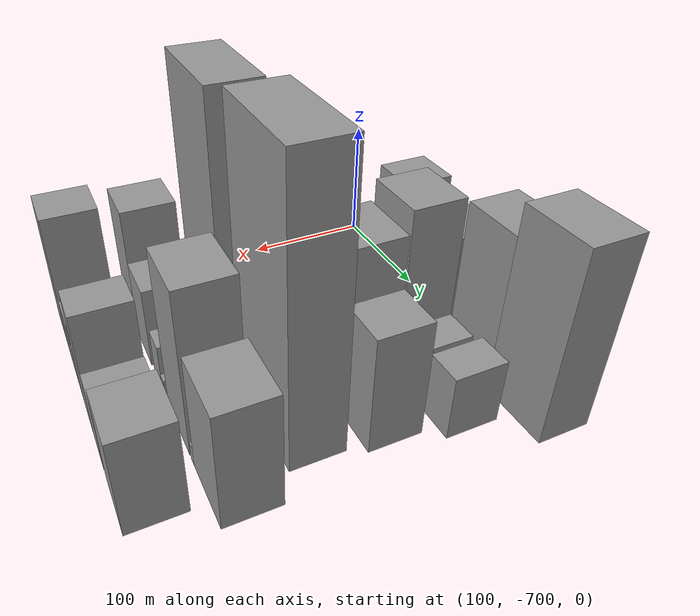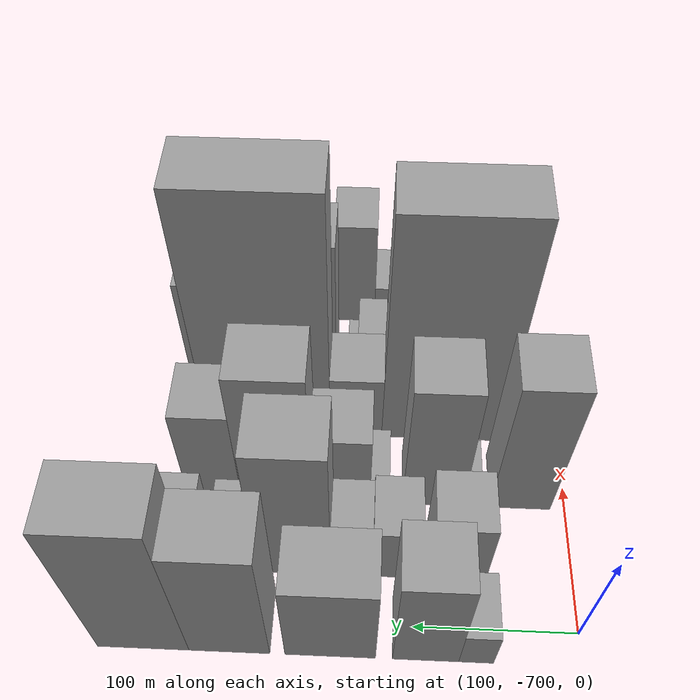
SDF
<sdf version="1.6">
 <world name="default">
  <model name="building_10">
   <static>1</static>
   <pose>100.0000 -637.5639 0 0.000000 0.000000 0.000000</pose>
   <link name="link">
    <pose>0 0 19.50 0 0 0</pose>
    <collision name="collision"><geometry><box><size>40.0000 20.5675 39.0000</size></box></geometry></collision>
    <visual name="visual">
     <cast_shadows>0</cast_shadows>
     <geometry><box><size>40.0000 20.5675 39.0000</size></box></geometry>
     <material>
      <script>
       <uri>model://grey_wall/materials/scripts</uri>
       <uri>model://grey_wall/materials/textures</uri>
       <name>vrc/grey_wall</name>
      </script>
     </material>
    </visual>
   </link>
  </model>
  <model name="building_11">
   <static>1</static>
   <pose>100.0000 -607.6773 0 0.000000 0.000000 0.000000</pose>
   <link name="link">
    <pose>0 0 51.00 0 0 0</pose>
    <collision name="collision"><geometry><box><size>40.0000 39.2058 102.0000</size></box></geometry></collision>
    <visual name="visual">
     <cast_shadows>0</cast_shadows>
     <geometry><box><size>40.0000 39.2058 102.0000</size></box></geometry>
     <material>
      <script>
       <uri>model://grey_wall/materials/scripts</uri>
       <uri>model://grey_wall/materials/textures</uri>
       <name>vrc/grey_wall</name>
      </script>
     </material>
    </visual>
   </link>
  </model>
  <model name="building_12">
   <static>1</static>
   <pose>100.0000 -551.1568 0 0.000000 0.000000 0.000000</pose>
   <link name="link">
    <pose>0 0 45.00 0 0 0</pose>
    <collision name="collision"><geometry><box><size>40.0000 53.8351 90.0000</size></box></geometry></collision>
    <visual name="visual">
     <cast_shadows>0</cast_shadows>
     <geometry><box><size>40.0000 53.8351 90.0000</size></box></geometry>
     <material>
      <script>
       <uri>model://grey_wall/materials/scripts</uri>
       <uri>model://grey_wall/materials/textures</uri>
       <name>vrc/grey_wall</name>
      </script>
     </material>
    </visual>
   </link>
  </model>
  <model name="building_13">
   <static>1</static>
   <pose>100.0000 -491.0969 0 0.000000 0.000000 0.000000</pose>
   <link name="link">
    <pose>0 0 63.00 0 0 0</pose>
    <collision name="collision"><geometry><box><size>40.0000 48.2848 126.0000</size></box></geometry></collision>
    <visual name="visual">
     <cast_shadows>0</cast_shadows>
     <geometry><box><size>40.0000 48.2848 126.0000</size></box></geometry>
     <material>
      <script>
       <uri>model://grey_wall/materials/scripts</uri>
       <uri>model://grey_wall/materials/textures</uri>
       <name>vrc/grey_wall</name>
      </script>
     </material>
    </visual>
   </link>
  </model>
  <model name="building_14">
   <static>1</static>
   <pose>100.0000 -439.5208 0 0.000000 0.000000 0.000000</pose>
   <link name="link">
    <pose>0 0 75.00 0 0 0</pose>
    <collision name="collision"><geometry><box><size>40.0000 54.8674 150.0000</size></box></geometry></collision>
    <visual name="visual">
     <cast_shadows>0</cast_shadows>
     <geometry><box><size>40.0000 54.8674 150.0000</size></box></geometry>
     <material>
      <script>
       <uri>model://grey_wall/materials/scripts</uri>
       <uri>model://grey_wall/materials/textures</uri>
       <name>vrc/grey_wall</name>
      </script>
     </material>
    </visual>
   </link>
  </model>
  <model name="building_50">
   <static>1</static>
   <pose>152.0000 -627.7862 0 0.000000 0.000000 0.000000</pose>
   <link name="link">
    <pose>0 0 33.00 0 0 0</pose>
    <collision name="collision"><geometry><box><size>40.0000 35.7652 66.0000</size></box></geometry></collision>
    <visual name="visual">
     <cast_shadows>0</cast_shadows>
     <geometry><box><size>40.0000 35.7652 66.0000</size></box></geometry>
     <material>
      <script>
       <uri>model://grey_wall/materials/scripts</uri>
       <uri>model://grey_wall/materials/textures</uri>
       <name>vrc/grey_wall</name>
      </script>
     </material>
    </visual>
   </link>
  </model>
  <model name="building_51">
   <static>1</static>
   <pose>152.0000 -589.1586 0 0.000000 0.000000 0.000000</pose>
   <link name="link">
    <pose>0 0 28.50 0 0 0</pose>
    <collision name="collision"><geometry><box><size>40.0000 29.4901 57.0000</size></box></geometry></collision>
    <visual name="visual">
     <cast_shadows>0</cast_shadows>
     <geometry><box><size>40.0000 29.4901 57.0000</size></box></geometry>
     <material>
      <script>
       <uri>model://grey_wall/materials/scripts</uri>
       <uri>model://grey_wall/materials/textures</uri>
       <name>vrc/grey_wall</name>
      </script>
     </material>
    </visual>
   </link>
  </model>
  <model name="building_52">
   <static>1</static>
   <pose>152.0000 -561.6178 0 0.000000 0.000000 0.000000</pose>
   <link name="link">
    <pose>0 0 25.50 0 0 0</pose>
    <collision name="collision"><geometry><box><size>40.0000 25.5915 51.0000</size></box></geometry></collision>
    <visual name="visual">
     <cast_shadows>0</cast_shadows>
     <geometry><box><size>40.0000 25.5915 51.0000</size></box></geometry>
     <material>
      <script>
       <uri>model://grey_wall/materials/scripts</uri>
       <uri>model://grey_wall/materials/textures</uri>
       <name>vrc/grey_wall</name>
      </script>
     </material>
    </visual>
   </link>
  </model>
  <model name="building_53">
   <static>1</static>
   <pose>152.0000 -525.6842 0 0.000000 0.000000 0.000000</pose>
   <link name="link">
    <pose>0 0 69.00 0 0 0</pose>
    <collision name="collision"><geometry><box><size>40.0000 46.2758 138.0000</size></box></geometry></collision>
    <visual name="visual">
     <cast_shadows>0</cast_shadows>
     <geometry><box><size>40.0000 46.2758 138.0000</size></box></geometry>
     <material>
      <script>
       <uri>model://grey_wall/materials/scripts</uri>
       <uri>model://grey_wall/materials/textures</uri>
       <name>vrc/grey_wall</name>
      </script>
     </material>
    </visual>
   </link>
  </model>
  <model name="building_54">
   <static>1</static>
   <pose>152.0000 -489.3933 0 0.000000 0.000000 0.000000</pose>
   <link name="link">
    <pose>0 0 22.50 0 0 0</pose>
    <collision name="collision"><geometry><box><size>40.0000 26.3059 45.0000</size></box></geometry></collision>
    <visual name="visual">
     <cast_shadows>0</cast_shadows>
     <geometry><box><size>40.0000 26.3059 45.0000</size></box></geometry>
     <material>
      <script>
       <uri>model://grey_wall/materials/scripts</uri>
       <uri>model://grey_wall/materials/textures</uri>
       <name>vrc/grey_wall</name>
      </script>
     </material>
    </visual>
   </link>
  </model>
  <model name="building_55">
   <static>1</static>
   <pose>152.0000 -453.8426 0 0.000000 0.000000 0.000000</pose>
   <link name="link">
    <pose>0 0 25.50 0 0 0</pose>
    <collision name="collision"><geometry><box><size>40.0000 26.7954 51.0000</size></box></geometry></collision>
    <visual name="visual">
     <cast_shadows>0</cast_shadows>
     <geometry><box><size>40.0000 26.7954 51.0000</size></box></geometry>
     <material>
      <script>
       <uri>model://grey_wall/materials/scripts</uri>
       <uri>model://grey_wall/materials/textures</uri>
       <name>vrc/grey_wall</name>
      </script>
     </material>
    </visual>
   </link>
  </model>
  <model name="building_96">
   <static>1</static>
   <pose>204.0000 -670.3769 0 0.000000 0.000000 0.000000</pose>
   <link name="link">
    <pose>0 0 66.00 0 0 0</pose>
    <collision name="collision"><geometry><box><size>40.0000 39.6915 132.0000</size></box></geometry></collision>
    <visual name="visual">
     <cast_shadows>0</cast_shadows>
     <geometry><box><size>40.0000 39.6915 132.0000</size></box></geometry>
     <material>
      <script>
       <uri>model://grey_wall/materials/scripts</uri>
       <uri>model://grey_wall/materials/textures</uri>
       <name>vrc/grey_wall</name>
      </script>
     </material>
    </visual>
   </link>
  </model>
  <model name="building_97">
   <static>1</static>
   <pose>204.0000 -640.8719 0 0.000000 0.000000 0.000000</pose>
   <link name="link">
    <pose>0 0 9.00 0 0 0</pose>
    <collision name="collision"><geometry><box><size>40.0000 7.3185 18.0000</size></box></geometry></collision>
    <visual name="visual">
     <cast_shadows>0</cast_shadows>
     <geometry><box><size>40.0000 7.3185 18.0000</size></box></geometry>
     <material>
      <script>
       <uri>model://grey_wall/materials/scripts</uri>
       <uri>model://grey_wall/materials/textures</uri>
       <name>vrc/grey_wall</name>
      </script>
     </material>
    </visual>
   </link>
  </model>
  <model name="building_98">
   <static>1</static>
   <pose>204.0000 -613.1644 0 0.000000 0.000000 0.000000</pose>
   <link name="link">
    <pose>0 0 63.00 0 0 0</pose>
    <collision name="collision"><geometry><box><size>40.0000 40.0965 126.0000</size></box></geometry></collision>
    <visual name="visual">
     <cast_shadows>0</cast_shadows>
     <geometry><box><size>40.0000 40.0965 126.0000</size></box></geometry>
     <material>
      <script>
       <uri>model://grey_wall/materials/scripts</uri>
       <uri>model://grey_wall/materials/textures</uri>
       <name>vrc/grey_wall</name>
      </script>
     </material>
    </visual>
   </link>
  </model>
  <model name="building_99">
   <static>1</static>
   <pose>204.0000 -578.0000 0 0.000000 0.000000 0.000000</pose>
   <link name="link">
    <pose>0 0 13.50 0 0 0</pose>
    <collision name="collision"><geometry><box><size>40.0000 12.2322 27.0000</size></box></geometry></collision>
    <visual name="visual">
     <cast_shadows>0</cast_shadows>
     <geometry><box><size>40.0000 12.2322 27.0000</size></box></geometry>
     <material>
      <script>
       <uri>model://grey_wall/materials/scripts</uri>
       <uri>model://grey_wall/materials/textures</uri>
       <name>vrc/grey_wall</name>
      </script>
     </material>
    </visual>
   </link>
  </model>
  <model name="building_100">
   <static>1</static>
   <pose>204.0000 -552.8324 0 0.000000 0.000000 0.000000</pose>
   <link name="link">
    <pose>0 0 36.00 0 0 0</pose>
    <collision name="collision"><geometry><box><size>40.0000 38.1032 72.0000</size></box></geometry></collision>
    <visual name="visual">
     <cast_shadows>0</cast_shadows>
     <geometry><box><size>40.0000 38.1032 72.0000</size></box></geometry>
     <material>
      <script>
       <uri>model://grey_wall/materials/scripts</uri>
       <uri>model://grey_wall/materials/textures</uri>
       <name>vrc/grey_wall</name>
      </script>
     </material>
    </visual>
   </link>
  </model>
  <model name="building_101">
   <static>1</static>
   <pose>204.0000 -510.4311 0 0.000000 0.000000 0.000000</pose>
   <link name="link">
    <pose>0 0 66.00 0 0 0</pose>
    <collision name="collision"><geometry><box><size>40.0000 46.6993 132.0000</size></box></geometry></collision>
    <visual name="visual">
     <cast_shadows>0</cast_shadows>
     <geometry><box><size>40.0000 46.6993 132.0000</size></box></geometry>
     <material>
      <script>
       <uri>model://grey_wall/materials/scripts</uri>
       <uri>model://grey_wall/materials/textures</uri>
       <name>vrc/grey_wall</name>
      </script>
     </material>
    </visual>
   </link>
  </model>
  <model name="building_102">
   <static>1</static>
   <pose>204.0000 -469.2606 0 0.000000 0.000000 0.000000</pose>
   <link name="link">
    <pose>0 0 46.50 0 0 0</pose>
    <collision name="collision"><geometry><box><size>40.0000 35.6415 93.0000</size></box></geometry></collision>
    <visual name="visual">
     <cast_shadows>0</cast_shadows>
     <geometry><box><size>40.0000 35.6415 93.0000</size></box></geometry>
     <material>
      <script>
       <uri>model://grey_wall/materials/scripts</uri>
       <uri>model://grey_wall/materials/textures</uri>
       <name>vrc/grey_wall</name>
      </script>
     </material>
    </visual>
   </link>
  </model>
  <model name="building_145">
   <static>1</static>
   <pose>256.0000 -619.1862 0 0.000000 0.000000 0.000000</pose>
   <link name="link">
    <pose>0 0 103.50 0 0 0</pose>
    <collision name="collision"><geometry><box><size>40.0000 81.2282 207.0000</size></box></geometry></collision>
    <visual name="visual">
     <cast_shadows>0</cast_shadows>
     <geometry><box><size>40.0000 81.2282 207.0000</size></box></geometry>
     <material>
      <script>
       <uri>model://grey_wall/materials/scripts</uri>
       <uri>model://grey_wall/materials/textures</uri>
       <name>vrc/grey_wall</name>
      </script>
     </material>
    </visual>
   </link>
  </model>
  <model name="building_146">
   <static>1</static>
   <pose>256.0000 -560.8783 0 0.000000 0.000000 0.000000</pose>
   <link name="link">
    <pose>0 0 31.50 0 0 0</pose>
    <collision name="collision"><geometry><box><size>40.0000 35.3877 63.0000</size></box></geometry></collision>
    <visual name="visual">
     <cast_shadows>0</cast_shadows>
     <geometry><box><size>40.0000 35.3877 63.0000</size></box></geometry>
     <material>
      <script>
       <uri>model://grey_wall/materials/scripts</uri>
       <uri>model://grey_wall/materials/textures</uri>
       <name>vrc/grey_wall</name>
      </script>
     </material>
    </visual>
   </link>
  </model>
  <model name="building_147">
   <static>1</static>
   <pose>256.0000 -500.8852 0 0.000000 0.000000 0.000000</pose>
   <link name="link">
    <pose>0 0 109.50 0 0 0</pose>
    <collision name="collision"><geometry><box><size>40.0000 84.5984 219.0000</size></box></geometry></collision>
    <visual name="visual">
     <cast_shadows>0</cast_shadows>
     <geometry><box><size>40.0000 84.5984 219.0000</size></box></geometry>
     <material>
      <script>
       <uri>model://grey_wall/materials/scripts</uri>
       <uri>model://grey_wall/materials/textures</uri>
       <name>vrc/grey_wall</name>
      </script>
     </material>
    </visual>
   </link>
  </model>
  <model name="building_194">
   <static>1</static>
   <pose>308.0000 -646.9198 0 0.000000 0.000000 0.000000</pose>
   <link name="link">
    <pose>0 0 54.00 0 0 0</pose>
    <collision name="collision"><geometry><box><size>40.0000 39.3878 108.0000</size></box></geometry></collision>
    <visual name="visual">
     <cast_shadows>0</cast_shadows>
     <geometry><box><size>40.0000 39.3878 108.0000</size></box></geometry>
     <material>
      <script>
       <uri>model://grey_wall/materials/scripts</uri>
       <uri>model://grey_wall/materials/textures</uri>
       <name>vrc/grey_wall</name>
      </script>
     </material>
    </visual>
   </link>
  </model>
  <model name="building_195">
   <static>1</static>
   <pose>308.0000 -608.1165 0 0.000000 0.000000 0.000000</pose>
   <link name="link">
    <pose>0 0 33.00 0 0 0</pose>
    <collision name="collision"><geometry><box><size>40.0000 38.2187 66.0000</size></box></geometry></collision>
    <visual name="visual">
     <cast_shadows>0</cast_shadows>
     <geometry><box><size>40.0000 38.2187 66.0000</size></box></geometry>
     <material>
      <script>
       <uri>model://grey_wall/materials/scripts</uri>
       <uri>model://grey_wall/materials/textures</uri>
       <name>vrc/grey_wall</name>
      </script>
     </material>
    </visual>
   </link>
  </model>
  <model name="building_196">
   <static>1</static>
   <pose>308.0000 -570.0433 0 0.000000 0.000000 0.000000</pose>
   <link name="link">
    <pose>0 0 19.50 0 0 0</pose>
    <collision name="collision"><geometry><box><size>40.0000 19.9279 39.0000</size></box></geometry></collision>
    <visual name="visual">
     <cast_shadows>0</cast_shadows>
     <geometry><box><size>40.0000 19.9279 39.0000</size></box></geometry>
     <material>
      <script>
       <uri>model://grey_wall/materials/scripts</uri>
       <uri>model://grey_wall/materials/textures</uri>
       <name>vrc/grey_wall</name>
      </script>
     </material>
    </visual>
   </link>
  </model>
  <model name="building_197">
   <static>1</static>
   <pose>308.0000 -556.4429 0 0.000000 0.000000 0.000000</pose>
   <link name="link">
    <pose>0 0 7.50 0 0 0</pose>
    <collision name="collision"><geometry><box><size>40.0000 7.2728 15.0000</size></box></geometry></collision>
    <visual name="visual">
     <cast_shadows>0</cast_shadows>
     <geometry><box><size>40.0000 7.2728 15.0000</size></box></geometry>
     <material>
      <script>
       <uri>model://grey_wall/materials/scripts</uri>
       <uri>model://grey_wall/materials/textures</uri>
       <name>vrc/grey_wall</name>
      </script>
     </material>
    </visual>
   </link>
  </model>
  <model name="building_198">
   <static>1</static>
   <pose>308.0000 -520.8126 0 0.000000 0.000000 0.000000</pose>
   <link name="link">
    <pose>0 0 64.50 0 0 0</pose>
    <collision name="collision"><geometry><box><size>40.0000 47.9879 129.0000</size></box></geometry></collision>
    <visual name="visual">
     <cast_shadows>0</cast_shadows>
     <geometry><box><size>40.0000 47.9879 129.0000</size></box></geometry>
     <material>
      <script>
       <uri>model://grey_wall/materials/scripts</uri>
       <uri>model://grey_wall/materials/textures</uri>
       <name>vrc/grey_wall</name>
      </script>
     </material>
    </visual>
   </link>
  </model>
  <model name="building_199">
   <static>1</static>
   <pose>308.0000 -490.7720 0 0.000000 0.000000 0.000000</pose>
   <link name="link">
    <pose>0 0 7.50 0 0 0</pose>
    <collision name="collision"><geometry><box><size>40.0000 6.0932 15.0000</size></box></geometry></collision>
    <visual name="visual">
     <cast_shadows>0</cast_shadows>
     <geometry><box><size>40.0000 6.0932 15.0000</size></box></geometry>
     <material>
      <script>
       <uri>model://grey_wall/materials/scripts</uri>
       <uri>model://grey_wall/materials/textures</uri>
       <name>vrc/grey_wall</name>
      </script>
     </material>
    </visual>
   </link>
  </model>
  <model name="building_200">
   <static>1</static>
   <pose>308.0000 -462.6954 0 0.000000 0.000000 0.000000</pose>
   <link name="link">
    <pose>0 0 45.00 0 0 0</pose>
    <collision name="collision"><geometry><box><size>40.0000 50.0601 90.0000</size></box></geometry></collision>
    <visual name="visual">
     <cast_shadows>0</cast_shadows>
     <geometry><box><size>40.0000 50.0601 90.0000</size></box></geometry>
     <material>
      <script>
       <uri>model://grey_wall/materials/scripts</uri>
       <uri>model://grey_wall/materials/textures</uri>
       <name>vrc/grey_wall</name>
      </script>
     </material>
    </visual>
   </link>
  </model>
  <model name="building_241">
   <static>1</static>
   <pose>360.0000 -659.6420 0 0.000000 0.000000 0.000000</pose>
   <link name="link">
    <pose>0 0 54.00 0 0 0</pose>
    <collision name="collision"><geometry><box><size>40.0000 38.7648 108.0000</size></box></geometry></collision>
    <visual name="visual">
     <cast_shadows>0</cast_shadows>
     <geometry><box><size>40.0000 38.7648 108.0000</size></box></geometry>
     <material>
      <script>
       <uri>model://grey_wall/materials/scripts</uri>
       <uri>model://grey_wall/materials/textures</uri>
       <name>vrc/grey_wall</name>
      </script>
     </material>
    </visual>
   </link>
  </model>
  <model name="building_242">
   <static>1</static>
   <pose>360.0000 -629.4837 0 0.000000 0.000000 0.000000</pose>
   <link name="link">
    <pose>0 0 19.50 0 0 0</pose>
    <collision name="collision"><geometry><box><size>40.0000 21.5517 39.0000</size></box></geometry></collision>
    <visual name="visual">
     <cast_shadows>0</cast_shadows>
     <geometry><box><size>40.0000 21.5517 39.0000</size></box></geometry>
     <material>
      <script>
       <uri>model://grey_wall/materials/scripts</uri>
       <uri>model://grey_wall/materials/textures</uri>
       <name>vrc/grey_wall</name>
      </script>
     </material>
    </visual>
   </link>
  </model>
  <model name="building_243">
   <static>1</static>
   <pose>360.0000 -604.8627 0 0.000000 0.000000 0.000000</pose>
   <link name="link">
    <pose>0 0 27.00 0 0 0</pose>
    <collision name="collision"><geometry><box><size>40.0000 27.6904 54.0000</size></box></geometry></collision>
    <visual name="visual">
     <cast_shadows>0</cast_shadows>
     <geometry><box><size>40.0000 27.6904 54.0000</size></box></geometry>
     <material>
      <script>
       <uri>model://grey_wall/materials/scripts</uri>
       <uri>model://grey_wall/materials/textures</uri>
       <name>vrc/grey_wall</name>
      </script>
     </material>
    </visual>
   </link>
  </model>
  <model name="building_244">
   <static>1</static>
   <pose>360.0000 -581.0543 0 0.000000 0.000000 0.000000</pose>
   <link name="link">
    <pose>0 0 18.00 0 0 0</pose>
    <collision name="collision"><geometry><box><size>40.0000 19.9265 36.0000</size></box></geometry></collision>
    <visual name="visual">
     <cast_shadows>0</cast_shadows>
     <geometry><box><size>40.0000 19.9265 36.0000</size></box></geometry>
     <material>
      <script>
       <uri>model://grey_wall/materials/scripts</uri>
       <uri>model://grey_wall/materials/textures</uri>
       <name>vrc/grey_wall</name>
      </script>
     </material>
    </visual>
   </link>
  </model>
  <model name="building_245">
   <static>1</static>
   <pose>360.0000 -556.3611 0 0.000000 0.000000 0.000000</pose>
   <link name="link">
    <pose>0 0 48.00 0 0 0</pose>
    <collision name="collision"><geometry><box><size>40.0000 29.4599 96.0000</size></box></geometry></collision>
    <visual name="visual">
     <cast_shadows>0</cast_shadows>
     <geometry><box><size>40.0000 29.4599 96.0000</size></box></geometry>
     <material>
      <script>
       <uri>model://grey_wall/materials/scripts</uri>
       <uri>model://grey_wall/materials/textures</uri>
       <name>vrc/grey_wall</name>
      </script>
     </material>
    </visual>
   </link>
  </model>
  <model name="building_246">
   <static>1</static>
   <pose>360.0000 -523.2061 0 0.000000 0.000000 0.000000</pose>
   <link name="link">
    <pose>0 0 27.00 0 0 0</pose>
    <collision name="collision"><geometry><box><size>40.0000 30.8501 54.0000</size></box></geometry></collision>
    <visual name="visual">
     <cast_shadows>0</cast_shadows>
     <geometry><box><size>40.0000 30.8501 54.0000</size></box></geometry>
     <material>
      <script>
       <uri>model://grey_wall/materials/scripts</uri>
       <uri>model://grey_wall/materials/textures</uri>
       <name>vrc/grey_wall</name>
      </script>
     </material>
    </visual>
   </link>
  </model>
  <model name="building_247">
   <static>1</static>
   <pose>360.0000 -478.7387 0 0.000000 0.000000 0.000000</pose>
   <link name="link">
    <pose>0 0 37.50 0 0 0</pose>
    <collision name="collision"><geometry><box><size>40.0000 44.0847 75.0000</size></box></geometry></collision>
    <visual name="visual">
     <cast_shadows>0</cast_shadows>
     <geometry><box><size>40.0000 44.0847 75.0000</size></box></geometry>
     <material>
      <script>
       <uri>model://grey_wall/materials/scripts</uri>
       <uri>model://grey_wall/materials/textures</uri>
       <name>vrc/grey_wall</name>
      </script>
     </material>
    </visual>
   </link>
  </model>
 </world>
</sdf>
